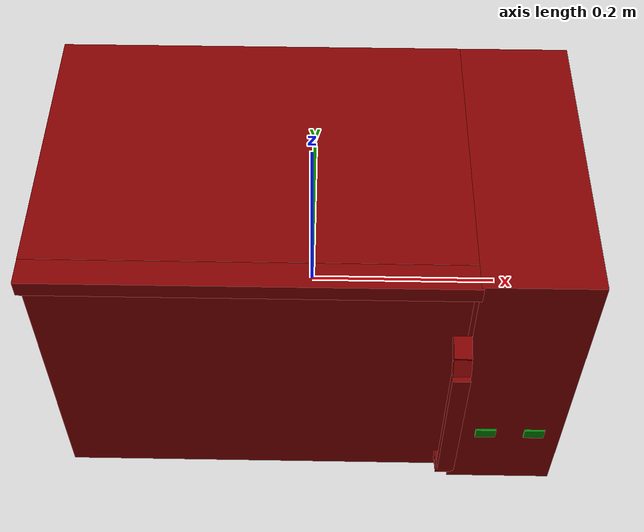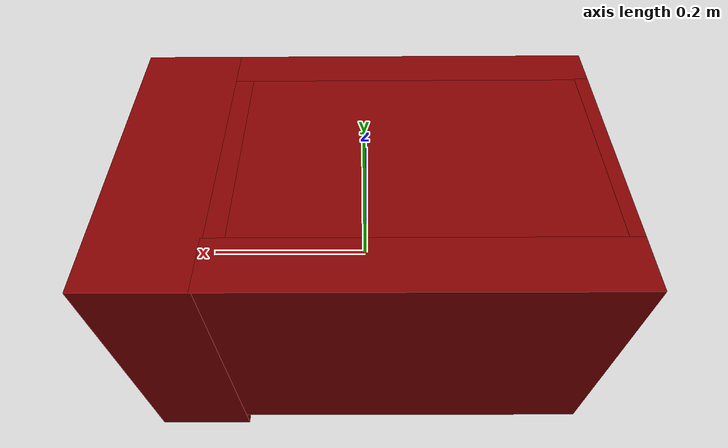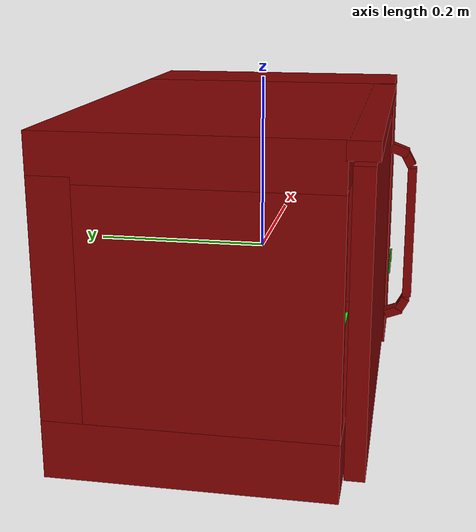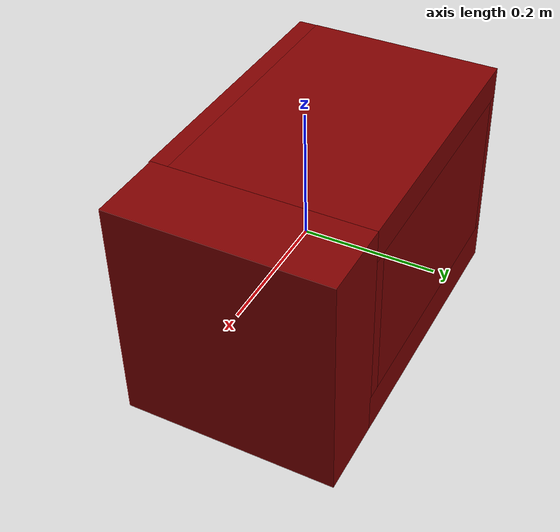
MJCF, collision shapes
<mujoco model="model">
  <compiler angle="radian"/>
  <asset>
    <mesh file="visuals/door.obj" name="door_vis"/>
    <mesh file="visuals/door_Clear.obj" name="door_Clear_vis"/>
    <mesh file="visuals/Body001.obj" name="Body001_vis"/>
    <mesh file="visuals/Disc001.obj" name="Disc001_vis"/>
    <texture file="visuals/T_BC001.png" name="Body001_material" type="2d"/>
    <material name="Body001_material" rgba="1 1 1 1.0" texture="Body001_material" shininess="0.4472135901451111" specular="0.3103448502657381"/>
    <texture file="visuals/T_BC001.png" name="door_material" type="2d"/>
    <material name="door_material" rgba="1 1 1 1.0" texture="door_material" shininess="0.4472135901451111" specular="0.3103448502657381"/>
    <material name="door_Clear_material" rgba="0.03637973591685295 0.03637973591685295 0.03637973591685295 0.800000011920929" shininess="0.4472135901451111" specular="0.3103448502657381"/>
    <texture file="visuals/T_BC001.png" name="Disc001_material" type="2d"/>
    <material name="Disc001_material" rgba="1 1 1 1.0" texture="Disc001_material" shininess="0.4472135901451111" specular="0.3103448502657381"/>
  </asset>
  <default>
    <default class="visual">
      <geom conaffinity="0" contype="0" group="1" type="mesh"/>
    </default>
    <default class="collision">
      <geom group="0" rgba="0.5 0 0 0.5"/>
    </default>
    <default class="spawn">
      <geom group="0" rgba="1 1 1 0.5" contype="0" conaffinity="0"/>
      <site group="0" rgba="1 1 1 0.5"/>
    </default>
    <default class="region">
      <geom group="1" conaffinity="0" contype="0" rgba="0 1 0 0"/>
    </default>
  </default>
  <worldbody>
    <body>
      <body name="object">
        <geom class="collision" type="box" pos="-0.05763543024659157 0.011082738637924194 -0.10156214982271194" size="0.11278744786977768 0.11278744786977768 0.0015410884516313672" quat="1.0 0.0 0.0 0.0" name="tray" rgba="0 1 0 0.5"/>
        <geom class="collision" type="box" pos="0.18966542184352875 -0.14820145070552826 -0.07778368890285492" size="0.010899275541305542 0.0010898024775087833 0.007179934997111559" quat="1.0 0.0 0.0 0.0" name="stop_button" rgba="0.0 0.5 0 0.5"/>
        <geom class="collision" type="box" pos="0.24208709597587585 -0.14820145070552826 -0.07778368890285492" size="0.010918227955698967 0.0010898024775087833 0.007179934997111559" quat="1.0 0.0 0.0 0.0" name="start_button" rgba="0.0 0.5 0 0.5"/>
        <geom mesh="Body001_vis" type="mesh" solimp="0.998 0.998 0.001" solref="0.001 1" density="100" friction="0.95 0.3 0.1" class="visual" material="Body001_material"/>
        <geom class="collision" type="box" pos="-0.056502893567085266 0.02996855601668358 -0.14597663283348083" size="0.21579737961292267 0.1495131552219391 0.03142062947154045" quat="1.0 0.0 0.0 0.0"/>
        <geom class="collision" type="box" pos="-0.2641925513744354 0.02996855601668358 0.005621984601020813" size="0.008105290122330189 0.14951308071613312 0.12430611997842789" quat="1.0 0.0 0.0 0.0"/>
        <geom class="collision" type="box" pos="-0.056502893567085266 0.15759463608264923 0.009011216461658478" size="0.21579702198505402 0.021885978057980537 0.12627413868904114" quat="1.0 0.0 0.0 0.0"/>
        <geom class="collision" type="box" pos="-0.056502893567085266 -0.13249026238918304 0.16796237230300903" size="0.2157968431711197 0.015356674790382385 0.009088605642318726" quat="1.0 0.0 0.0 0.0"/>
        <geom class="collision" type="box" pos="0.21454721689224243 0.016870811581611633 1.2223608791828156e-08" size="0.05775145813822746 0.16261056065559387 0.1773976981639862" quat="1.0 0.0 0.0 0.0"/>
        <geom class="collision" type="box" pos="-0.056502893567085266 0.02996855601668358 0.1527765989303589" size="0.21579650044441223 0.14951272308826447 0.02462051250040531" quat="1.0 0.0 0.0 0.0"/>
        <geom class="collision" type="box" pos="0.14710645377635956 0.02996855601668358 0.005621984601020813" size="0.011839145794510841 0.1495126187801361 0.12430567294359207" quat="1.0 0.0 0.0 0.0"/>
        <body name="door">
          <joint axis="0.0 0.0 1.0" pos="-0.25876790285110474 -0.13358816504478455 -0.0004099905490875244" limited="true" name="microjoint" range="-1.5707963267948966 0.0" type="hinge" damping="1" frictionloss="1" armature=".01" stiffness="0.05"/>
          <geom mesh="door_vis" type="mesh" solimp="0.998 0.998 0.001" solref="0.001 1" density="100" friction="0.95 0.3 0.1" class="visual" material="door_material"/>
          <geom class="collision" type="box" pos="-0.05747814476490021 -0.1336144506931305 7.297919364646077e-05" size="0.2102060317993164 0.010283015668392181 0.15368500351905823" quat="1.0 0.0 0.0 0.0"/>
          <geom class="collision" type="box" pos="0.14707039296627045 -0.17343617975711823 -0.01623465120792389" size="0.008900480344891548 0.005757460370659828 0.08767075091600418" quat="1.0 0.0 0.0 0.0" name="door_handle"/>
          <geom class="collision" type="box" pos="0.14707039296627045 -0.15629811584949493 0.09394919127225876" size="0.008900480344891548 0.005757460370659828 0.011349364183843136" quat="0.823179304599762 -0.5677815079689026 -0.0 0.0"/>
          <geom class="collision" type="box" pos="0.14707039296627045 -0.16797927021980286 0.08249380439519882" size="0.008900480344891548 0.005757460370659828 0.009123585186898708" quat="0.969722330570221 -0.24421025812625885 -0.0 0.0"/>
          <geom class="collision" type="box" pos="0.14707039296627045 -0.16796772181987762 -0.11498462408781052" size="0.008900480344891548 0.005757460370659828 0.009099206887185574" quat="0.969722330570221 0.24421025812625885 0.0 0.0"/>
          <geom class="collision" type="box" pos="0.14707039296627045 -0.15629811584949493 -0.12641854584217072" size="0.008900480344891548 0.005757460370659828 0.011349364183843136" quat="0.823179304599762 0.5677815079689026 0.0 0.0"/>
          <body name="door_Clear">
            <geom mesh="door_Clear_vis" type="mesh" solimp="0.998 0.998 0.001" solref="0.001 1" density="100" friction="0.95 0.3 0.1" class="visual" material="door_Clear_material"/>
            <geom class="collision" type="box" pos="-0.056987322866916656 -0.1371203511953354 -0.0003347874735482037" size="0.15617835521697998 0.006391293369233608 0.09085484594106674" quat="1.0 0.0 0.0 0.0"/>
          </body>
        </body>
        <body name="Disc001">
          <joint axis="0.0 0.0 1.0" pos="-0.05763543024659157 0.011082738637924194 -0.10824134945869446" limited="false" name="Disc001_joint" range="0 360" type="hinge" damping="1" frictionloss="1" armature=".01" stiffness="0.05"/>
          <geom mesh="Disc001_vis" type="mesh" solimp="0.998 0.998 0.001" solref="0.001 1" density="100" friction="0.95 0.3 0.1" class="visual" material="Disc001_material"/>
          <geom class="collision" type="cylinder" pos="-0.05763543024659157 0.011082738637924194 -0.10634709149599075" size="0.11278744786977768 0.0018401468405500054" quat="1.0 0.0 0.0 0.0"/>
        </body>
        <geom class="region" name="reg_main" type="box" pos="0.0 0.015749968588352203 7.450580596923828e-09" size="0.27229833602905273 0.1637307107448578 0.17739704251289368"/>
        <geom class="region" name="reg_int" type="box" pos="-0.0601707324385643 0.010693497955799103 -0.0014526769518852234" size="0.19145501405000687 0.12171315401792526 0.12418320029973984"/>
      </body>
    </body>
  </worldbody>
  <actuator>
    <motor name="microjoint_actuator" joint="microjoint" gear="10"/>
    <motor name="Disc001_joint_actuator" joint="Disc001_joint" gear="10"/>
  </actuator>
</mujoco>
